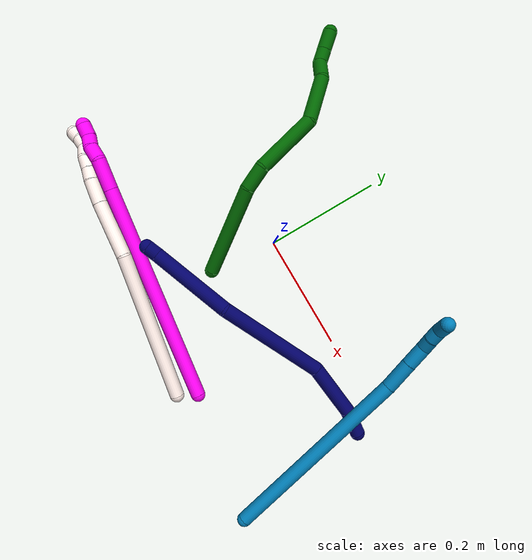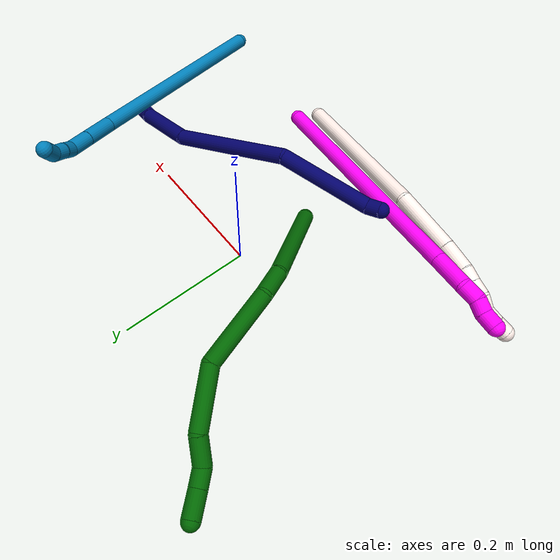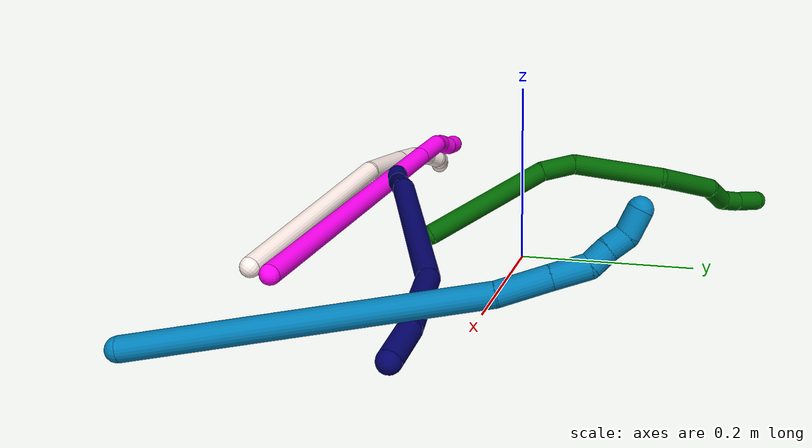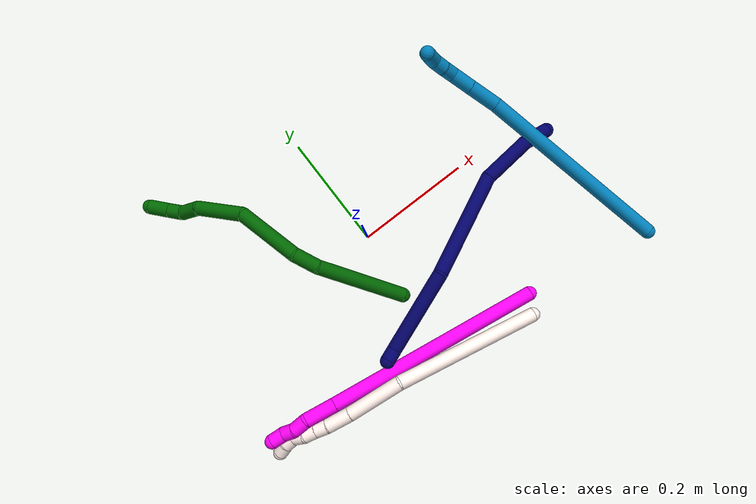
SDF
<sdf version="1.7">
 <world name="default">
  <model name="6">
   <static>0</static>
   <link name="6">
    <collision name="collision-cylinder-e_1_1_4">
     <pose>0.008457 0.003451 0.079957 -0.043135 0.105279 -0.002273</pose>
     <geometry><cylinder><radius>0.0125</radius><length>0.160954</length></cylinder></geometry>
     <surface>
      <friction><ode><mu>1.16</mu><mu2>1.16</mu2><slip1>0</slip1><slip2>0</slip2></ode></friction>
      <contact><ode><kp>1e+06</kp><kd>1</kd><max_vel>0</max_vel><min_depth>0.001</min_depth></ode></contact>
     </surface>
    </collision>
    <visual name="visual-cylinder-e_1_1_4">
     <pose>0.008457 0.003451 0.079957 -0.043135 0.105279 -0.002273</pose>
     <geometry><cylinder><radius>0.0125</radius><length>0.160954</length></cylinder></geometry>
     <material><ambient>0 0.392157 0.003922 1</ambient></material>
    </visual>
    <collision name="collision-cylinder-e_2_4_5">
     <pose>0.015908 0.01313 0.180036 -0.300176 -0.047722 0.007218</pose>
     <geometry><cylinder><radius>0.0125</radius><length>0.042176</length></cylinder></geometry>
     <surface>
      <friction><ode><mu>1.16</mu><mu2>1.16</mu2><slip1>0</slip1><slip2>0</slip2></ode></friction>
      <contact><ode><kp>1e+06</kp><kd>1</kd><max_vel>0</max_vel><min_depth>0.001</min_depth></ode></contact>
     </surface>
    </collision>
    <visual name="visual-cylinder-e_2_4_5">
     <pose>0.015908 0.01313 0.180036 -0.300176 -0.047722 0.007218</pose>
     <geometry><cylinder><radius>0.0125</radius><length>0.042176</length></cylinder></geometry>
     <material><ambient>0 0.392157 0.003922 1</ambient></material>
    </visual>
    <collision name="collision-cylinder-e_3_5_6">
     <pose>-0.000492 0.050335 0.244447 -0.610331 -0.277472 0.087914</pose>
     <geometry><cylinder><radius>0.0125</radius><length>0.112393</length></cylinder></geometry>
     <surface>
      <friction><ode><mu>1.16</mu><mu2>1.16</mu2><slip1>0</slip1><slip2>0</slip2></ode></friction>
      <contact><ode><kp>1e+06</kp><kd>1</kd><max_vel>0</max_vel><min_depth>0.001</min_depth></ode></contact>
     </surface>
    </collision>
    <visual name="visual-cylinder-e_3_5_6">
     <pose>-0.000492 0.050335 0.244447 -0.610331 -0.277472 0.087914</pose>
     <geometry><cylinder><radius>0.0125</radius><length>0.112393</length></cylinder></geometry>
     <material><ambient>0 0.392157 0.003922 1</ambient></material>
    </visual>
    <collision name="collision-cylinder-e_4_6_7">
     <pose>-0.039865 0.088308 0.322574 -0.203887 -0.606692 0.064018</pose>
     <geometry><cylinder><radius>0.0125</radius><length>0.084118</length></cylinder></geometry>
     <surface>
      <friction><ode><mu>1.16</mu><mu2>1.16</mu2><slip1>0</slip1><slip2>0</slip2></ode></friction>
      <contact><ode><kp>1e+06</kp><kd>1</kd><max_vel>0</max_vel><min_depth>0.001</min_depth></ode></contact>
     </surface>
    </collision>
    <visual name="visual-cylinder-e_4_6_7">
     <pose>-0.039865 0.088308 0.322574 -0.203887 -0.606692 0.064018</pose>
     <geometry><cylinder><radius>0.0125</radius><length>0.084118</length></cylinder></geometry>
     <material><ambient>0 0.392157 0.003922 1</ambient></material>
    </visual>
    <collision name="collision-cylinder-e_5_7_8">
     <pose>-0.080723 0.095415 0.366961 -0.010501 -1.01211 0.005819</pose>
     <geometry><cylinder><radius>0.0125</radius><length>0.039808</length></cylinder></geometry>
     <surface>
      <friction><ode><mu>1.16</mu><mu2>1.16</mu2><slip1>0</slip1><slip2>0</slip2></ode></friction>
      <contact><ode><kp>1e+06</kp><kd>1</kd><max_vel>0</max_vel><min_depth>0.001</min_depth></ode></contact>
     </surface>
    </collision>
    <visual name="visual-cylinder-e_5_7_8">
     <pose>-0.080723 0.095415 0.366961 -0.010501 -1.01211 0.005819</pose>
     <geometry><cylinder><radius>0.0125</radius><length>0.039808</length></cylinder></geometry>
     <material><ambient>0 0.392157 0.003922 1</ambient></material>
    </visual>
    <collision name="collision-cylinder-e_6_8_9">
     <pose>-0.103758 0.097464 0.388314 -0.177549 -0.511245 0.046514</pose>
     <geometry><cylinder><radius>0.0125</radius><length>0.025169</length></cylinder></geometry>
     <surface>
      <friction><ode><mu>1.16</mu><mu2>1.16</mu2><slip1>0</slip1><slip2>0</slip2></ode></friction>
      <contact><ode><kp>1e+06</kp><kd>1</kd><max_vel>0</max_vel><min_depth>0.001</min_depth></ode></contact>
     </surface>
    </collision>
    <visual name="visual-cylinder-e_6_8_9">
     <pose>-0.103758 0.097464 0.388314 -0.177549 -0.511245 0.046514</pose>
     <geometry><cylinder><radius>0.0125</radius><length>0.025169</length></cylinder></geometry>
     <material><ambient>0 0.392157 0.003922 1</ambient></material>
    </visual>
    <collision name="collision-cylinder-e_7_9_2">
     <pose>-0.117105 0.101676 0.41512 -0.141098 -0.41856 0.030015</pose>
     <geometry><cylinder><radius>0.0125</radius><length>0.035382</length></cylinder></geometry>
     <surface>
      <friction><ode><mu>1.16</mu><mu2>1.16</mu2><slip1>0</slip1><slip2>0</slip2></ode></friction>
      <contact><ode><kp>1e+06</kp><kd>1</kd><max_vel>0</max_vel><min_depth>0.001</min_depth></ode></contact>
     </surface>
    </collision>
    <visual name="visual-cylinder-e_7_9_2">
     <pose>-0.117105 0.101676 0.41512 -0.141098 -0.41856 0.030015</pose>
     <geometry><cylinder><radius>0.0125</radius><length>0.035382</length></cylinder></geometry>
     <material><ambient>0 0.392157 0.003922 1</ambient></material>
    </visual>
    <collision name="collision-sphere-2">
     <pose>-0.124296 0.103949 0.431124 0 -0 0</pose>
     <geometry><sphere><radius>0.0125</radius></sphere></geometry>
     <surface>
      <friction><ode><mu>1.16</mu><mu2>1.16</mu2><slip1>0</slip1><slip2>0</slip2></ode></friction>
      <contact><ode><kp>1e+06</kp><kd>1</kd><max_vel>0</max_vel><min_depth>0.001</min_depth></ode></contact>
     </surface>
    </collision>
    <visual name="visual-sphere-2">
     <pose>-0.124296 0.103949 0.431124 0 -0 0</pose>
     <geometry><sphere><radius>0.0125</radius></sphere></geometry>
     <material><ambient>0 0.392157 0.003922 1</ambient></material>
    </visual>
    <collision name="collision-sphere-9">
     <pose>-0.109915 0.099403 0.399117 0 -0 0</pose>
     <geometry><sphere><radius>0.0125</radius></sphere></geometry>
     <surface>
      <friction><ode><mu>1.16</mu><mu2>1.16</mu2><slip1>0</slip1><slip2>0</slip2></ode></friction>
      <contact><ode><kp>1e+06</kp><kd>1</kd><max_vel>0</max_vel><min_depth>0.001</min_depth></ode></contact>
     </surface>
    </collision>
    <visual name="visual-sphere-9">
     <pose>-0.109915 0.099403 0.399117 0 -0 0</pose>
     <geometry><sphere><radius>0.0125</radius></sphere></geometry>
     <material><ambient>0 0.392157 0.003922 1</ambient></material>
    </visual>
    <collision name="collision-sphere-4">
     <pose>0.016914 0.006902 0.159914 0 -0 0</pose>
     <geometry><sphere><radius>0.0125</radius></sphere></geometry>
     <surface>
      <friction><ode><mu>1.16</mu><mu2>1.16</mu2><slip1>0</slip1><slip2>0</slip2></ode></friction>
      <contact><ode><kp>1e+06</kp><kd>1</kd><max_vel>0</max_vel><min_depth>0.001</min_depth></ode></contact>
     </surface>
    </collision>
    <visual name="visual-sphere-4">
     <pose>0.016914 0.006902 0.159914 0 -0 0</pose>
     <geometry><sphere><radius>0.0125</radius></sphere></geometry>
     <material><ambient>0 0.392157 0.003922 1</ambient></material>
    </visual>
    <collision name="collision-sphere-1">
     <geometry><sphere><radius>0.0125</radius></sphere></geometry>
     <surface>
      <friction><ode><mu>1.16</mu><mu2>1.16</mu2><slip1>0</slip1><slip2>0</slip2></ode></friction>
      <contact><ode><kp>1e+06</kp><kd>1</kd><max_vel>0</max_vel><min_depth>0.001</min_depth></ode></contact>
     </surface>
    </collision>
    <visual name="visual-sphere-1">
     <geometry><sphere><radius>0.0125</radius></sphere></geometry>
     <material><ambient>0 0.392157 0.003922 1</ambient></material>
    </visual>
    <collision name="collision-sphere-8">
     <pose>-0.097601 0.095526 0.377511 0 -0 0</pose>
     <geometry><sphere><radius>0.0125</radius></sphere></geometry>
     <surface>
      <friction><ode><mu>1.16</mu><mu2>1.16</mu2><slip1>0</slip1><slip2>0</slip2></ode></friction>
      <contact><ode><kp>1e+06</kp><kd>1</kd><max_vel>0</max_vel><min_depth>0.001</min_depth></ode></contact>
     </surface>
    </collision>
    <visual name="visual-sphere-8">
     <pose>-0.097601 0.095526 0.377511 0 -0 0</pose>
     <geometry><sphere><radius>0.0125</radius></sphere></geometry>
     <material><ambient>0 0.392157 0.003922 1</ambient></material>
    </visual>
    <collision name="collision-sphere-5">
     <pose>0.014902 0.019359 0.200158 0 -0 0</pose>
     <geometry><sphere><radius>0.0125</radius></sphere></geometry>
     <surface>
      <friction><ode><mu>1.16</mu><mu2>1.16</mu2><slip1>0</slip1><slip2>0</slip2></ode></friction>
      <contact><ode><kp>1e+06</kp><kd>1</kd><max_vel>0</max_vel><min_depth>0.001</min_depth></ode></contact>
     </surface>
    </collision>
    <visual name="visual-sphere-5">
     <pose>0.014902 0.019359 0.200158 0 -0 0</pose>
     <geometry><sphere><radius>0.0125</radius></sphere></geometry>
     <material><ambient>0 0.392157 0.003922 1</ambient></material>
    </visual>
    <collision name="collision-sphere-6">
     <pose>-0.015886 0.081312 0.288737 0 -0 0</pose>
     <geometry><sphere><radius>0.0125</radius></sphere></geometry>
     <surface>
      <friction><ode><mu>1.16</mu><mu2>1.16</mu2><slip1>0</slip1><slip2>0</slip2></ode></friction>
      <contact><ode><kp>1e+06</kp><kd>1</kd><max_vel>0</max_vel><min_depth>0.001</min_depth></ode></contact>
     </surface>
    </collision>
    <visual name="visual-sphere-6">
     <pose>-0.015886 0.081312 0.288737 0 -0 0</pose>
     <geometry><sphere><radius>0.0125</radius></sphere></geometry>
     <material><ambient>0 0.392157 0.003922 1</ambient></material>
    </visual>
    <collision name="collision-sphere-7">
     <pose>-0.063845 0.095304 0.356411 0 -0 0</pose>
     <geometry><sphere><radius>0.0125</radius></sphere></geometry>
     <surface>
      <friction><ode><mu>1.16</mu><mu2>1.16</mu2><slip1>0</slip1><slip2>0</slip2></ode></friction>
      <contact><ode><kp>1e+06</kp><kd>1</kd><max_vel>0</max_vel><min_depth>0.001</min_depth></ode></contact>
     </surface>
    </collision>
    <visual name="visual-sphere-7">
     <pose>-0.063845 0.095304 0.356411 0 -0 0</pose>
     <geometry><sphere><radius>0.0125</radius></sphere></geometry>
     <material><ambient>0 0.392157 0.003922 1</ambient></material>
    </visual>
    <inertial>
     <pose>-0.02269 0.048088 0.228281 0 -0 0</pose>
     <mass>0.5</mass>
     <inertia>
      <ixx>0.000534</ixx>
      <ixy>0</ixy>
      <ixz>0</ixz>
      <iyy>0.00055</iyy>
      <iyz>0</iyz>
      <izz>-2.5e-05</izz>
     </inertia>
    </inertial>
   </link>
   <pose>-0.013201 -0.116836 0.014993 -0.797605 -1.06296 -0.019504</pose>
  </model>
  <model name="7">
   <static>0</static>
   <link name="7">
    <collision name="collision-cylinder-e_1_1_4">
     <pose>-0.023594 0.00123 0.00188 -0.579571 -1.47586 0.529536</pose>
     <geometry><cylinder><radius>0.0125</radius><length>0.047402</length></cylinder></geometry>
     <surface>
      <friction><ode><mu>1.16</mu><mu2>1.16</mu2><slip1>0</slip1><slip2>0</slip2></ode></friction>
      <contact><ode><kp>1e+06</kp><kd>1</kd><max_vel>0</max_vel><min_depth>0.001</min_depth></ode></contact>
     </surface>
    </collision>
    <visual name="visual-cylinder-e_1_1_4">
     <pose>-0.023594 0.00123 0.00188 -0.579571 -1.47586 0.529536</pose>
     <geometry><cylinder><radius>0.0125</radius><length>0.047402</length></cylinder></geometry>
     <material><ambient>0.003922 0 0.403922 1</ambient></material>
    </visual>
    <collision name="collision-cylinder-e_2_4_5">
     <pose>-0.093352 0.007257 -0.002286 -2.47093 -1.40516 2.36069</pose>
     <geometry><cylinder><radius>0.0125</radius><length>0.093607</length></cylinder></geometry>
     <surface>
      <friction><ode><mu>1.16</mu><mu2>1.16</mu2><slip1>0</slip1><slip2>0</slip2></ode></friction>
      <contact><ode><kp>1e+06</kp><kd>1</kd><max_vel>0</max_vel><min_depth>0.001</min_depth></ode></contact>
     </surface>
    </collision>
    <visual name="visual-cylinder-e_2_4_5">
     <pose>-0.093352 0.007257 -0.002286 -2.47093 -1.40516 2.36069</pose>
     <geometry><cylinder><radius>0.0125</radius><length>0.093607</length></cylinder></geometry>
     <material><ambient>0.003922 0 0.403922 1</ambient></material>
    </visual>
    <collision name="collision-cylinder-e_3_5_6">
     <pose>-0.225389 0.009138 -0.048162 3.06854 -1.13548 -3.02712</pose>
     <geometry><cylinder><radius>0.0125</radius><length>0.189414</length></cylinder></geometry>
     <surface>
      <friction><ode><mu>1.16</mu><mu2>1.16</mu2><slip1>0</slip1><slip2>0</slip2></ode></friction>
      <contact><ode><kp>1e+06</kp><kd>1</kd><max_vel>0</max_vel><min_depth>0.001</min_depth></ode></contact>
     </surface>
    </collision>
    <visual name="visual-cylinder-e_3_5_6">
     <pose>-0.225389 0.009138 -0.048162 3.06854 -1.13548 -3.02712</pose>
     <geometry><cylinder><radius>0.0125</radius><length>0.189414</length></cylinder></geometry>
     <material><ambient>0.003922 0 0.403922 1</ambient></material>
    </visual>
    <collision name="collision-cylinder-e_4_6_7">
     <pose>-0.371219 0.035342 -0.119181 -2.3905 -0.952287 1.83618</pose>
     <geometry><cylinder><radius>0.0125</radius><length>0.147176</length></cylinder></geometry>
     <surface>
      <friction><ode><mu>1.16</mu><mu2>1.16</mu2><slip1>0</slip1><slip2>0</slip2></ode></friction>
      <contact><ode><kp>1e+06</kp><kd>1</kd><max_vel>0</max_vel><min_depth>0.001</min_depth></ode></contact>
     </surface>
    </collision>
    <visual name="visual-cylinder-e_4_6_7">
     <pose>-0.371219 0.035342 -0.119181 -2.3905 -0.952287 1.83618</pose>
     <geometry><cylinder><radius>0.0125</radius><length>0.147176</length></cylinder></geometry>
     <material><ambient>0.003922 0 0.403922 1</ambient></material>
    </visual>
    <collision name="collision-cylinder-e_5_7_2">
     <pose>-0.441594 0.064613 -0.154475 -3.10435 -1.19516 3.08688</pose>
     <geometry><cylinder><radius>0.0125</radius><length>0.0224</length></cylinder></geometry>
     <surface>
      <friction><ode><mu>1.16</mu><mu2>1.16</mu2><slip1>0</slip1><slip2>0</slip2></ode></friction>
      <contact><ode><kp>1e+06</kp><kd>1</kd><max_vel>0</max_vel><min_depth>0.001</min_depth></ode></contact>
     </surface>
    </collision>
    <visual name="visual-cylinder-e_5_7_2">
     <pose>-0.441594 0.064613 -0.154475 -3.10435 -1.19516 3.08688</pose>
     <geometry><cylinder><radius>0.0125</radius><length>0.0224</length></cylinder></geometry>
     <material><ambient>0.003922 0 0.403922 1</ambient></material>
    </visual>
    <collision name="collision-sphere-2">
     <pose>-0.452013 0.064766 -0.158581 0 -0 0</pose>
     <geometry><sphere><radius>0.0125</radius></sphere></geometry>
     <surface>
      <friction><ode><mu>1.16</mu><mu2>1.16</mu2><slip1>0</slip1><slip2>0</slip2></ode></friction>
      <contact><ode><kp>1e+06</kp><kd>1</kd><max_vel>0</max_vel><min_depth>0.001</min_depth></ode></contact>
     </surface>
    </collision>
    <visual name="visual-sphere-2">
     <pose>-0.452013 0.064766 -0.158581 0 -0 0</pose>
     <geometry><sphere><radius>0.0125</radius></sphere></geometry>
     <material><ambient>0.003922 0 0.403922 1</ambient></material>
    </visual>
    <collision name="collision-sphere-7">
     <pose>-0.431175 0.06446 -0.150369 0 -0 0</pose>
     <geometry><sphere><radius>0.0125</radius></sphere></geometry>
     <surface>
      <friction><ode><mu>1.16</mu><mu2>1.16</mu2><slip1>0</slip1><slip2>0</slip2></ode></friction>
      <contact><ode><kp>1e+06</kp><kd>1</kd><max_vel>0</max_vel><min_depth>0.001</min_depth></ode></contact>
     </surface>
    </collision>
    <visual name="visual-sphere-7">
     <pose>-0.431175 0.06446 -0.150369 0 -0 0</pose>
     <geometry><sphere><radius>0.0125</radius></sphere></geometry>
     <material><ambient>0.003922 0 0.403922 1</ambient></material>
    </visual>
    <collision name="collision-sphere-6">
     <pose>-0.311264 0.006223 -0.087993 0 -0 0</pose>
     <geometry><sphere><radius>0.0125</radius></sphere></geometry>
     <surface>
      <friction><ode><mu>1.16</mu><mu2>1.16</mu2><slip1>0</slip1><slip2>0</slip2></ode></friction>
      <contact><ode><kp>1e+06</kp><kd>1</kd><max_vel>0</max_vel><min_depth>0.001</min_depth></ode></contact>
     </surface>
    </collision>
    <visual name="visual-sphere-6">
     <pose>-0.311264 0.006223 -0.087993 0 -0 0</pose>
     <geometry><sphere><radius>0.0125</radius></sphere></geometry>
     <material><ambient>0.003922 0 0.403922 1</ambient></material>
    </visual>
    <collision name="collision-sphere-5">
     <pose>-0.139515 0.012053 -0.008331 0 -0 0</pose>
     <geometry><sphere><radius>0.0125</radius></sphere></geometry>
     <surface>
      <friction><ode><mu>1.16</mu><mu2>1.16</mu2><slip1>0</slip1><slip2>0</slip2></ode></friction>
      <contact><ode><kp>1e+06</kp><kd>1</kd><max_vel>0</max_vel><min_depth>0.001</min_depth></ode></contact>
     </surface>
    </collision>
    <visual name="visual-sphere-5">
     <pose>-0.139515 0.012053 -0.008331 0 -0 0</pose>
     <geometry><sphere><radius>0.0125</radius></sphere></geometry>
     <material><ambient>0.003922 0 0.403922 1</ambient></material>
    </visual>
    <collision name="collision-sphere-1">
     <geometry><sphere><radius>0.0125</radius></sphere></geometry>
     <surface>
      <friction><ode><mu>1.16</mu><mu2>1.16</mu2><slip1>0</slip1><slip2>0</slip2></ode></friction>
      <contact><ode><kp>1e+06</kp><kd>1</kd><max_vel>0</max_vel><min_depth>0.001</min_depth></ode></contact>
     </surface>
    </collision>
    <visual name="visual-sphere-1">
     <geometry><sphere><radius>0.0125</radius></sphere></geometry>
     <material><ambient>0.003922 0 0.403922 1</ambient></material>
    </visual>
    <collision name="collision-sphere-4">
     <pose>-0.047189 0.002461 0.00376 0 -0 0</pose>
     <geometry><sphere><radius>0.0125</radius></sphere></geometry>
     <surface>
      <friction><ode><mu>1.16</mu><mu2>1.16</mu2><slip1>0</slip1><slip2>0</slip2></ode></friction>
      <contact><ode><kp>1e+06</kp><kd>1</kd><max_vel>0</max_vel><min_depth>0.001</min_depth></ode></contact>
     </surface>
    </collision>
    <visual name="visual-sphere-4">
     <pose>-0.047189 0.002461 0.00376 0 -0 0</pose>
     <geometry><sphere><radius>0.0125</radius></sphere></geometry>
     <material><ambient>0.003922 0 0.403922 1</ambient></material>
    </visual>
    <inertial>
     <pose>-0.23415 0.018235 -0.060497 0 -0 0</pose>
     <mass>0.5</mass>
     <inertia>
      <ixx>-0.000192</ixx>
      <ixy>0</ixy>
      <ixz>0</ixz>
      <iyy>0.000992</iyy>
      <iyz>0</iyz>
      <izz>0.000715</izz>
     </inertia>
    </inertial>
   </link>
   <pose>0.358552 -0.043236 0.012474 -1.42429 0.308126 -0.007878</pose>
  </model>
  <model name="9">
   <static>0</static>
   <link name="9">
    <collision name="collision-cylinder-e_1_1_4">
     <pose>0.009783 0.163177 0.049587 -1.27578 0.057302 -0.042482</pose>
     <geometry><cylinder><radius>0.0125</radius><length>0.341651</length></cylinder></geometry>
     <surface>
      <friction><ode><mu>1.16</mu><mu2>1.16</mu2><slip1>0</slip1><slip2>0</slip2></ode></friction>
      <contact><ode><kp>1e+06</kp><kd>1</kd><max_vel>0</max_vel><min_depth>0.001</min_depth></ode></contact>
     </surface>
    </collision>
    <visual name="visual-cylinder-e_1_1_4">
     <pose>0.009783 0.163177 0.049587 -1.27578 0.057302 -0.042482</pose>
     <geometry><cylinder><radius>0.0125</radius><length>0.341651</length></cylinder></geometry>
     <material><ambient>0 0.490196 0.709804 1</ambient></material>
    </visual>
    <collision name="collision-cylinder-e_2_4_5">
     <pose>0.016898 0.350506 0.108183 -1.21379 -0.10316 0.071657</pose>
     <geometry><cylinder><radius>0.0125</radius><length>0.05183</length></cylinder></geometry>
     <surface>
      <friction><ode><mu>1.16</mu><mu2>1.16</mu2><slip1>0</slip1><slip2>0</slip2></ode></friction>
      <contact><ode><kp>1e+06</kp><kd>1</kd><max_vel>0</max_vel><min_depth>0.001</min_depth></ode></contact>
     </surface>
    </collision>
    <visual name="visual-cylinder-e_2_4_5">
     <pose>0.016898 0.350506 0.108183 -1.21379 -0.10316 0.071657</pose>
     <geometry><cylinder><radius>0.0125</radius><length>0.05183</length></cylinder></geometry>
     <material><ambient>0 0.490196 0.709804 1</ambient></material>
    </visual>
    <collision name="collision-cylinder-e_3_5_6">
     <pose>0.012615 0.391933 0.123459 -1.22275 -0.087607 0.061429</pose>
     <geometry><cylinder><radius>0.0125</radius><length>0.036896</length></cylinder></geometry>
     <surface>
      <friction><ode><mu>1.16</mu><mu2>1.16</mu2><slip1>0</slip1><slip2>0</slip2></ode></friction>
      <contact><ode><kp>1e+06</kp><kd>1</kd><max_vel>0</max_vel><min_depth>0.001</min_depth></ode></contact>
     </surface>
    </collision>
    <visual name="visual-cylinder-e_3_5_6">
     <pose>0.012615 0.391933 0.123459 -1.22275 -0.087607 0.061429</pose>
     <geometry><cylinder><radius>0.0125</radius><length>0.036896</length></cylinder></geometry>
     <material><ambient>0 0.490196 0.709804 1</ambient></material>
    </visual>
    <collision name="collision-cylinder-e_4_6_7">
     <pose>0.006853 0.416845 0.136658 -0.833807 -0.382398 0.171026</pose>
     <geometry><cylinder><radius>0.0125</radius><length>0.022231</length></cylinder></geometry>
     <surface>
      <friction><ode><mu>1.16</mu><mu2>1.16</mu2><slip1>0</slip1><slip2>0</slip2></ode></friction>
      <contact><ode><kp>1e+06</kp><kd>1</kd><max_vel>0</max_vel><min_depth>0.001</min_depth></ode></contact>
     </surface>
    </collision>
    <visual name="visual-cylinder-e_4_6_7">
     <pose>0.006853 0.416845 0.136658 -0.833807 -0.382398 0.171026</pose>
     <geometry><cylinder><radius>0.0125</radius><length>0.022231</length></cylinder></geometry>
     <material><ambient>0 0.490196 0.709804 1</ambient></material>
    </visual>
    <collision name="collision-cylinder-e_5_7_8">
     <pose>-0.00015 0.432675 0.149634 -0.935128 -0.273412 0.138691</pose>
     <geometry><cylinder><radius>0.0125</radius><length>0.021151</length></cylinder></geometry>
     <surface>
      <friction><ode><mu>1.16</mu><mu2>1.16</mu2><slip1>0</slip1><slip2>0</slip2></ode></friction>
      <contact><ode><kp>1e+06</kp><kd>1</kd><max_vel>0</max_vel><min_depth>0.001</min_depth></ode></contact>
     </surface>
    </collision>
    <visual name="visual-cylinder-e_5_7_8">
     <pose>-0.00015 0.432675 0.149634 -0.935128 -0.273412 0.138691</pose>
     <geometry><cylinder><radius>0.0125</radius><length>0.021151</length></cylinder></geometry>
     <material><ambient>0 0.490196 0.709804 1</ambient></material>
    </visual>
    <collision name="collision-cylinder-e_6_8_2">
     <pose>-0.008528 0.445849 0.166489 -0.431682 -0.434461 0.09671</pose>
     <geometry><cylinder><radius>0.0125</radius><length>0.026241</length></cylinder></geometry>
     <surface>
      <friction><ode><mu>1.16</mu><mu2>1.16</mu2><slip1>0</slip1><slip2>0</slip2></ode></friction>
      <contact><ode><kp>1e+06</kp><kd>1</kd><max_vel>0</max_vel><min_depth>0.001</min_depth></ode></contact>
     </surface>
    </collision>
    <visual name="visual-cylinder-e_6_8_2">
     <pose>-0.008528 0.445849 0.166489 -0.431682 -0.434461 0.09671</pose>
     <geometry><cylinder><radius>0.0125</radius><length>0.026241</length></cylinder></geometry>
     <material><ambient>0 0.490196 0.709804 1</ambient></material>
    </visual>
    <collision name="collision-sphere-2">
     <pose>-0.014051 0.450828 0.177299 0 -0 0</pose>
     <geometry><sphere><radius>0.0125</radius></sphere></geometry>
     <surface>
      <friction><ode><mu>1.16</mu><mu2>1.16</mu2><slip1>0</slip1><slip2>0</slip2></ode></friction>
      <contact><ode><kp>1e+06</kp><kd>1</kd><max_vel>0</max_vel><min_depth>0.001</min_depth></ode></contact>
     </surface>
    </collision>
    <visual name="visual-sphere-2">
     <pose>-0.014051 0.450828 0.177299 0 -0 0</pose>
     <geometry><sphere><radius>0.0125</radius></sphere></geometry>
     <material><ambient>0 0.490196 0.709804 1</ambient></material>
    </visual>
    <collision name="collision-sphere-4">
     <pose>0.019567 0.326354 0.099175 0 -0 0</pose>
     <geometry><sphere><radius>0.0125</radius></sphere></geometry>
     <surface>
      <friction><ode><mu>1.16</mu><mu2>1.16</mu2><slip1>0</slip1><slip2>0</slip2></ode></friction>
      <contact><ode><kp>1e+06</kp><kd>1</kd><max_vel>0</max_vel><min_depth>0.001</min_depth></ode></contact>
     </surface>
    </collision>
    <visual name="visual-sphere-4">
     <pose>0.019567 0.326354 0.099175 0 -0 0</pose>
     <geometry><sphere><radius>0.0125</radius></sphere></geometry>
     <material><ambient>0 0.490196 0.709804 1</ambient></material>
    </visual>
    <collision name="collision-sphere-1">
     <geometry><sphere><radius>0.0125</radius></sphere></geometry>
     <surface>
      <friction><ode><mu>1.16</mu><mu2>1.16</mu2><slip1>0</slip1><slip2>0</slip2></ode></friction>
      <contact><ode><kp>1e+06</kp><kd>1</kd><max_vel>0</max_vel><min_depth>0.001</min_depth></ode></contact>
     </surface>
    </collision>
    <visual name="visual-sphere-1">
     <geometry><sphere><radius>0.0125</radius></sphere></geometry>
     <material><ambient>0 0.490196 0.709804 1</ambient></material>
    </visual>
    <collision name="collision-sphere-8">
     <pose>-0.003005 0.440869 0.155679 0 -0 0</pose>
     <geometry><sphere><radius>0.0125</radius></sphere></geometry>
     <surface>
      <friction><ode><mu>1.16</mu><mu2>1.16</mu2><slip1>0</slip1><slip2>0</slip2></ode></friction>
      <contact><ode><kp>1e+06</kp><kd>1</kd><max_vel>0</max_vel><min_depth>0.001</min_depth></ode></contact>
     </surface>
    </collision>
    <visual name="visual-sphere-8">
     <pose>-0.003005 0.440869 0.155679 0 -0 0</pose>
     <geometry><sphere><radius>0.0125</radius></sphere></geometry>
     <material><ambient>0 0.490196 0.709804 1</ambient></material>
    </visual>
    <collision name="collision-sphere-5">
     <pose>0.014229 0.374658 0.117191 0 -0 0</pose>
     <geometry><sphere><radius>0.0125</radius></sphere></geometry>
     <surface>
      <friction><ode><mu>1.16</mu><mu2>1.16</mu2><slip1>0</slip1><slip2>0</slip2></ode></friction>
      <contact><ode><kp>1e+06</kp><kd>1</kd><max_vel>0</max_vel><min_depth>0.001</min_depth></ode></contact>
     </surface>
    </collision>
    <visual name="visual-sphere-5">
     <pose>0.014229 0.374658 0.117191 0 -0 0</pose>
     <geometry><sphere><radius>0.0125</radius></sphere></geometry>
     <material><ambient>0 0.490196 0.709804 1</ambient></material>
    </visual>
    <collision name="collision-sphere-6">
     <pose>0.011001 0.409209 0.129727 0 -0 0</pose>
     <geometry><sphere><radius>0.0125</radius></sphere></geometry>
     <surface>
      <friction><ode><mu>1.16</mu><mu2>1.16</mu2><slip1>0</slip1><slip2>0</slip2></ode></friction>
      <contact><ode><kp>1e+06</kp><kd>1</kd><max_vel>0</max_vel><min_depth>0.001</min_depth></ode></contact>
     </surface>
    </collision>
    <visual name="visual-sphere-6">
     <pose>0.011001 0.409209 0.129727 0 -0 0</pose>
     <geometry><sphere><radius>0.0125</radius></sphere></geometry>
     <material><ambient>0 0.490196 0.709804 1</ambient></material>
    </visual>
    <collision name="collision-sphere-7">
     <pose>0.002706 0.424482 0.143588 0 -0 0</pose>
     <geometry><sphere><radius>0.0125</radius></sphere></geometry>
     <surface>
      <friction><ode><mu>1.16</mu><mu2>1.16</mu2><slip1>0</slip1><slip2>0</slip2></ode></friction>
      <contact><ode><kp>1e+06</kp><kd>1</kd><max_vel>0</max_vel><min_depth>0.001</min_depth></ode></contact>
     </surface>
    </collision>
    <visual name="visual-sphere-7">
     <pose>0.002706 0.424482 0.143588 0 -0 0</pose>
     <geometry><sphere><radius>0.0125</radius></sphere></geometry>
     <material><ambient>0 0.490196 0.709804 1</ambient></material>
    </visual>
    <inertial>
     <pose>0.009218 0.23699 0.075351 0 -0 0</pose>
     <mass>0.5</mass>
     <inertia>
      <ixx>0.003212</ixx>
      <ixy>0</ixy>
      <ixz>0</ixz>
      <iyy>0.000884</iyy>
      <iyz>0</iyz>
      <izz>-0.003382</izz>
     </inertia>
    </inertial>
   </link>
   <pose>0.387468 -0.288494 0.012491 -0.113979 0.398124 0.372945</pose>
  </model>
  <model name="10">
   <static>0</static>
   <link name="10">
    <collision name="collision-cylinder-e_1_1_4">
     <pose>-0.036247 -0.027262 0.184396 0.146781 -0.192061 -0.014164</pose>
     <geometry><cylinder><radius>0.0125</radius><length>0.379783</length></cylinder></geometry>
     <surface>
      <friction><ode><mu>1.16</mu><mu2>1.16</mu2><slip1>0</slip1><slip2>0</slip2></ode></friction>
      <contact><ode><kp>1e+06</kp><kd>1</kd><max_vel>0</max_vel><min_depth>0.001</min_depth></ode></contact>
     </surface>
    </collision>
    <visual name="visual-cylinder-e_1_1_4">
     <pose>-0.036247 -0.027262 0.184396 0.146781 -0.192061 -0.014164</pose>
     <geometry><cylinder><radius>0.0125</radius><length>0.379783</length></cylinder></geometry>
     <material><ambient>1 0 0.964706 1</ambient></material>
    </visual>
    <collision name="collision-cylinder-e_2_4_5">
     <pose>-0.077145 -0.058432 0.394087 0.153297 -0.179765 -0.013843</pose>
     <geometry><cylinder><radius>0.0125</radius><length>0.05203</length></cylinder></geometry>
     <surface>
      <friction><ode><mu>1.16</mu><mu2>1.16</mu2><slip1>0</slip1><slip2>0</slip2></ode></friction>
      <contact><ode><kp>1e+06</kp><kd>1</kd><max_vel>0</max_vel><min_depth>0.001</min_depth></ode></contact>
     </surface>
    </collision>
    <visual name="visual-cylinder-e_2_4_5">
     <pose>-0.077145 -0.058432 0.394087 0.153297 -0.179765 -0.013843</pose>
     <geometry><cylinder><radius>0.0125</radius><length>0.05203</length></cylinder></geometry>
     <material><ambient>1 0 0.964706 1</ambient></material>
    </visual>
    <collision name="collision-cylinder-e_3_5_6">
     <pose>-0.085969 -0.059741 0.431177 -0.216928 -0.332625 0.036554</pose>
     <geometry><cylinder><radius>0.0125</radius><length>0.025556</length></cylinder></geometry>
     <surface>
      <friction><ode><mu>1.16</mu><mu2>1.16</mu2><slip1>0</slip1><slip2>0</slip2></ode></friction>
      <contact><ode><kp>1e+06</kp><kd>1</kd><max_vel>0</max_vel><min_depth>0.001</min_depth></ode></contact>
     </surface>
    </collision>
    <visual name="visual-cylinder-e_3_5_6">
     <pose>-0.085969 -0.059741 0.431177 -0.216928 -0.332625 0.036554</pose>
     <geometry><cylinder><radius>0.0125</radius><length>0.025556</length></cylinder></geometry>
     <material><ambient>1 0 0.964706 1</ambient></material>
    </visual>
    <collision name="collision-cylinder-e_4_6_7">
     <pose>-0.090066 -0.053923 0.45245 -0.327336 0.007538 -0.001245</pose>
     <geometry><cylinder><radius>0.0125</radius><length>0.020021</length></cylinder></geometry>
     <surface>
      <friction><ode><mu>1.16</mu><mu2>1.16</mu2><slip1>0</slip1><slip2>0</slip2></ode></friction>
      <contact><ode><kp>1e+06</kp><kd>1</kd><max_vel>0</max_vel><min_depth>0.001</min_depth></ode></contact>
     </surface>
    </collision>
    <visual name="visual-cylinder-e_4_6_7">
     <pose>-0.090066 -0.053923 0.45245 -0.327336 0.007538 -0.001245</pose>
     <geometry><cylinder><radius>0.0125</radius><length>0.020021</length></cylinder></geometry>
     <material><ambient>1 0 0.964706 1</ambient></material>
    </visual>
    <collision name="collision-cylinder-e_5_7_2">
     <pose>-0.092578 -0.049767 0.472894 -0.085328 -0.230912 0.009902</pose>
     <geometry><cylinder><radius>0.0125</radius><length>0.02261</length></cylinder></geometry>
     <surface>
      <friction><ode><mu>1.16</mu><mu2>1.16</mu2><slip1>0</slip1><slip2>0</slip2></ode></friction>
      <contact><ode><kp>1e+06</kp><kd>1</kd><max_vel>0</max_vel><min_depth>0.001</min_depth></ode></contact>
     </surface>
    </collision>
    <visual name="visual-cylinder-e_5_7_2">
     <pose>-0.092578 -0.049767 0.472894 -0.085328 -0.230912 0.009902</pose>
     <geometry><cylinder><radius>0.0125</radius><length>0.02261</length></cylinder></geometry>
     <material><ambient>1 0 0.964706 1</ambient></material>
    </visual>
    <collision name="collision-sphere-2">
     <pose>-0.095165 -0.048829 0.483859 0 -0 0</pose>
     <geometry><sphere><radius>0.0125</radius></sphere></geometry>
     <surface>
      <friction><ode><mu>1.16</mu><mu2>1.16</mu2><slip1>0</slip1><slip2>0</slip2></ode></friction>
      <contact><ode><kp>1e+06</kp><kd>1</kd><max_vel>0</max_vel><min_depth>0.001</min_depth></ode></contact>
     </surface>
    </collision>
    <visual name="visual-sphere-2">
     <pose>-0.095165 -0.048829 0.483859 0 -0 0</pose>
     <geometry><sphere><radius>0.0125</radius></sphere></geometry>
     <material><ambient>1 0 0.964706 1</ambient></material>
    </visual>
    <collision name="collision-sphere-7">
     <pose>-0.08999 -0.050705 0.461929 0 -0 0</pose>
     <geometry><sphere><radius>0.0125</radius></sphere></geometry>
     <surface>
      <friction><ode><mu>1.16</mu><mu2>1.16</mu2><slip1>0</slip1><slip2>0</slip2></ode></friction>
      <contact><ode><kp>1e+06</kp><kd>1</kd><max_vel>0</max_vel><min_depth>0.001</min_depth></ode></contact>
     </surface>
    </collision>
    <visual name="visual-sphere-7">
     <pose>-0.08999 -0.050705 0.461929 0 -0 0</pose>
     <geometry><sphere><radius>0.0125</radius></sphere></geometry>
     <material><ambient>1 0 0.964706 1</ambient></material>
    </visual>
    <collision name="collision-sphere-6">
     <pose>-0.090141 -0.057142 0.442971 0 -0 0</pose>
     <geometry><sphere><radius>0.0125</radius></sphere></geometry>
     <surface>
      <friction><ode><mu>1.16</mu><mu2>1.16</mu2><slip1>0</slip1><slip2>0</slip2></ode></friction>
      <contact><ode><kp>1e+06</kp><kd>1</kd><max_vel>0</max_vel><min_depth>0.001</min_depth></ode></contact>
     </surface>
    </collision>
    <visual name="visual-sphere-6">
     <pose>-0.090141 -0.057142 0.442971 0 -0 0</pose>
     <geometry><sphere><radius>0.0125</radius></sphere></geometry>
     <material><ambient>1 0 0.964706 1</ambient></material>
    </visual>
    <collision name="collision-sphere-5">
     <pose>-0.081797 -0.06234 0.419382 0 -0 0</pose>
     <geometry><sphere><radius>0.0125</radius></sphere></geometry>
     <surface>
      <friction><ode><mu>1.16</mu><mu2>1.16</mu2><slip1>0</slip1><slip2>0</slip2></ode></friction>
      <contact><ode><kp>1e+06</kp><kd>1</kd><max_vel>0</max_vel><min_depth>0.001</min_depth></ode></contact>
     </surface>
    </collision>
    <visual name="visual-sphere-5">
     <pose>-0.081797 -0.06234 0.419382 0 -0 0</pose>
     <geometry><sphere><radius>0.0125</radius></sphere></geometry>
     <material><ambient>1 0 0.964706 1</ambient></material>
    </visual>
    <collision name="collision-sphere-1">
     <geometry><sphere><radius>0.0125</radius></sphere></geometry>
     <surface>
      <friction><ode><mu>1.16</mu><mu2>1.16</mu2><slip1>0</slip1><slip2>0</slip2></ode></friction>
      <contact><ode><kp>1e+06</kp><kd>1</kd><max_vel>0</max_vel><min_depth>0.001</min_depth></ode></contact>
     </surface>
    </collision>
    <visual name="visual-sphere-1">
     <geometry><sphere><radius>0.0125</radius></sphere></geometry>
     <material><ambient>1 0 0.964706 1</ambient></material>
    </visual>
    <collision name="collision-sphere-4">
     <pose>-0.072494 -0.054524 0.368791 0 -0 0</pose>
     <geometry><sphere><radius>0.0125</radius></sphere></geometry>
     <surface>
      <friction><ode><mu>1.16</mu><mu2>1.16</mu2><slip1>0</slip1><slip2>0</slip2></ode></friction>
      <contact><ode><kp>1e+06</kp><kd>1</kd><max_vel>0</max_vel><min_depth>0.001</min_depth></ode></contact>
     </surface>
    </collision>
    <visual name="visual-sphere-4">
     <pose>-0.072494 -0.054524 0.368791 0 -0 0</pose>
     <geometry><sphere><radius>0.0125</radius></sphere></geometry>
     <material><ambient>1 0 0.964706 1</ambient></material>
    </visual>
    <inertial>
     <pose>-0.047746 -0.034251 0.242609 0 -0 0</pose>
     <mass>0.5</mass>
     <inertia>
      <ixx>0.004443</ixx>
      <ixy>0</ixy>
      <ixz>0</ixz>
      <iyy>0.004483</iyy>
      <iyz>0</iyz>
      <izz>0.001574</izz>
     </inertia>
    </inertial>
   </link>
   <pose>0.160049 -0.247477 0.01155 -1.5934 0.136075 1.24187</pose>
  </model>
  <model name="11">
   <static>0</static>
   <link name="11">
    <collision name="collision-cylinder-e_1_1_4">
     <pose>-0.076274 0.007873 0.10468 -0.075071 -0.628351 0.024404</pose>
     <geometry><cylinder><radius>0.0125</radius><length>0.25952</length></cylinder></geometry>
     <surface>
      <friction><ode><mu>1.16</mu><mu2>1.16</mu2><slip1>0</slip1><slip2>0</slip2></ode></friction>
      <contact><ode><kp>1e+06</kp><kd>1</kd><max_vel>0</max_vel><min_depth>0.001</min_depth></ode></contact>
     </surface>
    </collision>
    <visual name="visual-cylinder-e_1_1_4">
     <pose>-0.076274 0.007873 0.10468 -0.075071 -0.628351 0.024404</pose>
     <geometry><cylinder><radius>0.0125</radius><length>0.25952</length></cylinder></geometry>
     <material><ambient>1 0.933333 0.909804 1</ambient></material>
    </visual>
    <collision name="collision-cylinder-e_2_4_5">
     <pose>-0.190353 0.021865 0.238148 -0.209431 -0.909296 0.102656</pose>
     <geometry><cylinder><radius>0.0125</radius><length>0.095819</length></cylinder></geometry>
     <surface>
      <friction><ode><mu>1.16</mu><mu2>1.16</mu2><slip1>0</slip1><slip2>0</slip2></ode></friction>
      <contact><ode><kp>1e+06</kp><kd>1</kd><max_vel>0</max_vel><min_depth>0.001</min_depth></ode></contact>
     </surface>
    </collision>
    <visual name="visual-cylinder-e_2_4_5">
     <pose>-0.190353 0.021865 0.238148 -0.209431 -0.909296 0.102656</pose>
     <geometry><cylinder><radius>0.0125</radius><length>0.095819</length></cylinder></geometry>
     <material><ambient>1 0.933333 0.909804 1</ambient></material>
    </visual>
    <collision name="collision-cylinder-e_3_5_6">
     <pose>-0.244307 0.031921 0.279888 -0.295085 -0.873154 0.138475</pose>
     <geometry><cylinder><radius>0.0125</radius><length>0.042147</length></cylinder></geometry>
     <surface>
      <friction><ode><mu>1.16</mu><mu2>1.16</mu2><slip1>0</slip1><slip2>0</slip2></ode></friction>
      <contact><ode><kp>1e+06</kp><kd>1</kd><max_vel>0</max_vel><min_depth>0.001</min_depth></ode></contact>
     </surface>
    </collision>
    <visual name="visual-cylinder-e_3_5_6">
     <pose>-0.244307 0.031921 0.279888 -0.295085 -0.873154 0.138475</pose>
     <geometry><cylinder><radius>0.0125</radius><length>0.042147</length></cylinder></geometry>
     <material><ambient>1 0.933333 0.909804 1</ambient></material>
    </visual>
    <collision name="collision-cylinder-e_4_6_7">
     <pose>-0.268271 0.03931 0.298829 -0.522884 -0.846607 0.239941</pose>
     <geometry><cylinder><radius>0.0125</radius><length>0.020864</length></cylinder></geometry>
     <surface>
      <friction><ode><mu>1.16</mu><mu2>1.16</mu2><slip1>0</slip1><slip2>0</slip2></ode></friction>
      <contact><ode><kp>1e+06</kp><kd>1</kd><max_vel>0</max_vel><min_depth>0.001</min_depth></ode></contact>
     </surface>
    </collision>
    <visual name="visual-cylinder-e_4_6_7">
     <pose>-0.268271 0.03931 0.298829 -0.522884 -0.846607 0.239941</pose>
     <geometry><cylinder><radius>0.0125</radius><length>0.020864</length></cylinder></geometry>
     <material><ambient>1 0.933333 0.909804 1</ambient></material>
    </visual>
    <collision name="collision-cylinder-e_5_7_8">
     <pose>-0.284586 0.04575 0.310729 -0.468116 -0.908848 0.23191</pose>
     <geometry><cylinder><radius>0.0125</radius><length>0.021555</length></cylinder></geometry>
     <surface>
      <friction><ode><mu>1.16</mu><mu2>1.16</mu2><slip1>0</slip1><slip2>0</slip2></ode></friction>
      <contact><ode><kp>1e+06</kp><kd>1</kd><max_vel>0</max_vel><min_depth>0.001</min_depth></ode></contact>
     </surface>
    </collision>
    <visual name="visual-cylinder-e_5_7_8">
     <pose>-0.284586 0.04575 0.310729 -0.468116 -0.908848 0.23191</pose>
     <geometry><cylinder><radius>0.0125</radius><length>0.021555</length></cylinder></geometry>
     <material><ambient>1 0.933333 0.909804 1</ambient></material>
    </visual>
    <collision name="collision-cylinder-e_6_8_9">
     <pose>-0.300317 0.05424 0.320928 -0.90877 -0.803354 0.409174</pose>
     <geometry><cylinder><radius>0.0125</radius><length>0.020091</length></cylinder></geometry>
     <surface>
      <friction><ode><mu>1.16</mu><mu2>1.16</mu2><slip1>0</slip1><slip2>0</slip2></ode></friction>
      <contact><ode><kp>1e+06</kp><kd>1</kd><max_vel>0</max_vel><min_depth>0.001</min_depth></ode></contact>
     </surface>
    </collision>
    <visual name="visual-cylinder-e_6_8_9">
     <pose>-0.300317 0.05424 0.320928 -0.90877 -0.803354 0.409174</pose>
     <geometry><cylinder><radius>0.0125</radius><length>0.020091</length></cylinder></geometry>
     <material><ambient>1 0.933333 0.909804 1</ambient></material>
    </visual>
    <collision name="collision-cylinder-e_7_9_10">
     <pose>-0.316981 0.061077 0.328255 -0.414132 -1.23241 0.295384</pose>
     <geometry><cylinder><radius>0.0125</radius><length>0.020004</length></cylinder></geometry>
     <surface>
      <friction><ode><mu>1.16</mu><mu2>1.16</mu2><slip1>0</slip1><slip2>0</slip2></ode></friction>
      <contact><ode><kp>1e+06</kp><kd>1</kd><max_vel>0</max_vel><min_depth>0.001</min_depth></ode></contact>
     </surface>
    </collision>
    <visual name="visual-cylinder-e_7_9_10">
     <pose>-0.316981 0.061077 0.328255 -0.414132 -1.23241 0.295384</pose>
     <geometry><cylinder><radius>0.0125</radius><length>0.020004</length></cylinder></geometry>
     <material><ambient>1 0.933333 0.909804 1</ambient></material>
    </visual>
    <collision name="collision-cylinder-e_8_10_2">
     <pose>-0.33635 0.063172 0.332155 -0.722437 -1.45581 0.649504</pose>
     <geometry><cylinder><radius>0.0125</radius><length>0.02</length></cylinder></geometry>
     <surface>
      <friction><ode><mu>1.16</mu><mu2>1.16</mu2><slip1>0</slip1><slip2>0</slip2></ode></friction>
      <contact><ode><kp>1e+06</kp><kd>1</kd><max_vel>0</max_vel><min_depth>0.001</min_depth></ode></contact>
     </surface>
    </collision>
    <visual name="visual-cylinder-e_8_10_2">
     <pose>-0.33635 0.063172 0.332155 -0.722437 -1.45581 0.649504</pose>
     <geometry><cylinder><radius>0.0125</radius><length>0.02</length></cylinder></geometry>
     <material><ambient>1 0.933333 0.909804 1</ambient></material>
    </visual>
    <collision name="collision-sphere-2">
     <pose>-0.346284 0.063931 0.333016 0 -0 0</pose>
     <geometry><sphere><radius>0.0125</radius></sphere></geometry>
     <surface>
      <friction><ode><mu>1.16</mu><mu2>1.16</mu2><slip1>0</slip1><slip2>0</slip2></ode></friction>
      <contact><ode><kp>1e+06</kp><kd>1</kd><max_vel>0</max_vel><min_depth>0.001</min_depth></ode></contact>
     </surface>
    </collision>
    <visual name="visual-sphere-2">
     <pose>-0.346284 0.063931 0.333016 0 -0 0</pose>
     <geometry><sphere><radius>0.0125</radius></sphere></geometry>
     <material><ambient>1 0.933333 0.909804 1</ambient></material>
    </visual>
    <collision name="collision-sphere-10">
     <pose>-0.326416 0.062414 0.331294 0 -0 0</pose>
     <geometry><sphere><radius>0.0125</radius></sphere></geometry>
     <surface>
      <friction><ode><mu>1.16</mu><mu2>1.16</mu2><slip1>0</slip1><slip2>0</slip2></ode></friction>
      <contact><ode><kp>1e+06</kp><kd>1</kd><max_vel>0</max_vel><min_depth>0.001</min_depth></ode></contact>
     </surface>
    </collision>
    <visual name="visual-sphere-10">
     <pose>-0.326416 0.062414 0.331294 0 -0 0</pose>
     <geometry><sphere><radius>0.0125</radius></sphere></geometry>
     <material><ambient>1 0.933333 0.909804 1</ambient></material>
    </visual>
    <collision name="collision-sphere-9">
     <pose>-0.307546 0.059741 0.325215 0 -0 0</pose>
     <geometry><sphere><radius>0.0125</radius></sphere></geometry>
     <surface>
      <friction><ode><mu>1.16</mu><mu2>1.16</mu2><slip1>0</slip1><slip2>0</slip2></ode></friction>
      <contact><ode><kp>1e+06</kp><kd>1</kd><max_vel>0</max_vel><min_depth>0.001</min_depth></ode></contact>
     </surface>
    </collision>
    <visual name="visual-sphere-9">
     <pose>-0.307546 0.059741 0.325215 0 -0 0</pose>
     <geometry><sphere><radius>0.0125</radius></sphere></geometry>
     <material><ambient>1 0.933333 0.909804 1</ambient></material>
    </visual>
    <collision name="collision-sphere-4">
     <pose>-0.152549 0.015746 0.20936 0 -0 0</pose>
     <geometry><sphere><radius>0.0125</radius></sphere></geometry>
     <surface>
      <friction><ode><mu>1.16</mu><mu2>1.16</mu2><slip1>0</slip1><slip2>0</slip2></ode></friction>
      <contact><ode><kp>1e+06</kp><kd>1</kd><max_vel>0</max_vel><min_depth>0.001</min_depth></ode></contact>
     </surface>
    </collision>
    <visual name="visual-sphere-4">
     <pose>-0.152549 0.015746 0.20936 0 -0 0</pose>
     <geometry><sphere><radius>0.0125</radius></sphere></geometry>
     <material><ambient>1 0.933333 0.909804 1</ambient></material>
    </visual>
    <collision name="collision-sphere-1">
     <geometry><sphere><radius>0.0125</radius></sphere></geometry>
     <surface>
      <friction><ode><mu>1.16</mu><mu2>1.16</mu2><slip1>0</slip1><slip2>0</slip2></ode></friction>
      <contact><ode><kp>1e+06</kp><kd>1</kd><max_vel>0</max_vel><min_depth>0.001</min_depth></ode></contact>
     </surface>
    </collision>
    <visual name="visual-sphere-1">
     <geometry><sphere><radius>0.0125</radius></sphere></geometry>
     <material><ambient>1 0.933333 0.909804 1</ambient></material>
    </visual>
    <collision name="collision-sphere-8">
     <pose>-0.293087 0.048739 0.31664 0 -0 0</pose>
     <geometry><sphere><radius>0.0125</radius></sphere></geometry>
     <surface>
      <friction><ode><mu>1.16</mu><mu2>1.16</mu2><slip1>0</slip1><slip2>0</slip2></ode></friction>
      <contact><ode><kp>1e+06</kp><kd>1</kd><max_vel>0</max_vel><min_depth>0.001</min_depth></ode></contact>
     </surface>
    </collision>
    <visual name="visual-sphere-8">
     <pose>-0.293087 0.048739 0.31664 0 -0 0</pose>
     <geometry><sphere><radius>0.0125</radius></sphere></geometry>
     <material><ambient>1 0.933333 0.909804 1</ambient></material>
    </visual>
    <collision name="collision-sphere-5">
     <pose>-0.228157 0.027984 0.266935 0 -0 0</pose>
     <geometry><sphere><radius>0.0125</radius></sphere></geometry>
     <surface>
      <friction><ode><mu>1.16</mu><mu2>1.16</mu2><slip1>0</slip1><slip2>0</slip2></ode></friction>
      <contact><ode><kp>1e+06</kp><kd>1</kd><max_vel>0</max_vel><min_depth>0.001</min_depth></ode></contact>
     </surface>
    </collision>
    <visual name="visual-sphere-5">
     <pose>-0.228157 0.027984 0.266935 0 -0 0</pose>
     <geometry><sphere><radius>0.0125</radius></sphere></geometry>
     <material><ambient>1 0.933333 0.909804 1</ambient></material>
    </visual>
    <collision name="collision-sphere-6">
     <pose>-0.260457 0.035858 0.292841 0 -0 0</pose>
     <geometry><sphere><radius>0.0125</radius></sphere></geometry>
     <surface>
      <friction><ode><mu>1.16</mu><mu2>1.16</mu2><slip1>0</slip1><slip2>0</slip2></ode></friction>
      <contact><ode><kp>1e+06</kp><kd>1</kd><max_vel>0</max_vel><min_depth>0.001</min_depth></ode></contact>
     </surface>
    </collision>
    <visual name="visual-sphere-6">
     <pose>-0.260457 0.035858 0.292841 0 -0 0</pose>
     <geometry><sphere><radius>0.0125</radius></sphere></geometry>
     <material><ambient>1 0.933333 0.909804 1</ambient></material>
    </visual>
    <collision name="collision-sphere-7">
     <pose>-0.276085 0.042761 0.304817 0 -0 0</pose>
     <geometry><sphere><radius>0.0125</radius></sphere></geometry>
     <surface>
      <friction><ode><mu>1.16</mu><mu2>1.16</mu2><slip1>0</slip1><slip2>0</slip2></ode></friction>
      <contact><ode><kp>1e+06</kp><kd>1</kd><max_vel>0</max_vel><min_depth>0.001</min_depth></ode></contact>
     </surface>
    </collision>
    <visual name="visual-sphere-7">
     <pose>-0.276085 0.042761 0.304817 0 -0 0</pose>
     <geometry><sphere><radius>0.0125</radius></sphere></geometry>
     <material><ambient>1 0.933333 0.909804 1</ambient></material>
    </visual>
    <inertial>
     <pose>-0.158328 0.02173 0.188744 0 -0 0</pose>
     <mass>0.5</mass>
     <inertia>
      <ixx>0.00125</ixx>
      <ixy>0</ixy>
      <ixz>0</ixz>
      <iyy>0.001595</iyy>
      <iyz>0</iyz>
      <izz>0.000859</izz>
     </inertia>
    </inertial>
   </link>
   <pose>0.142042 -0.279477 0.011971 -0.695113 -0.514455 0.406238</pose>
  </model>
 </world>
</sdf>
